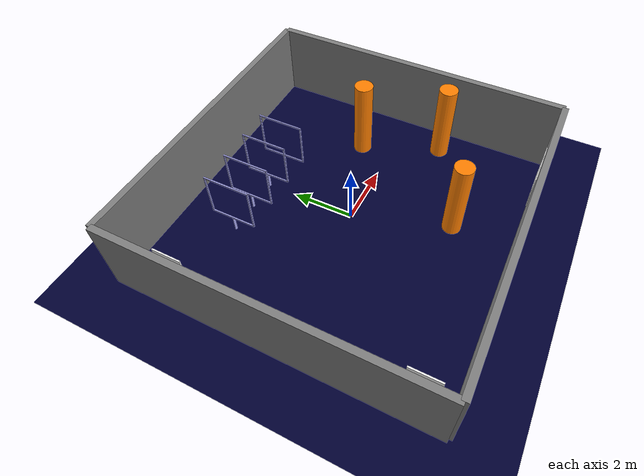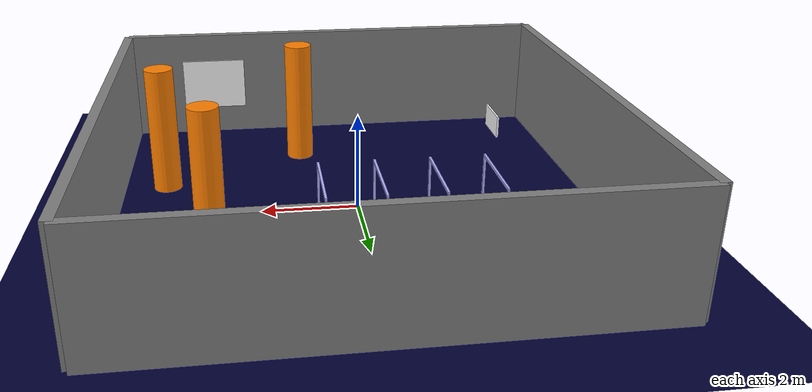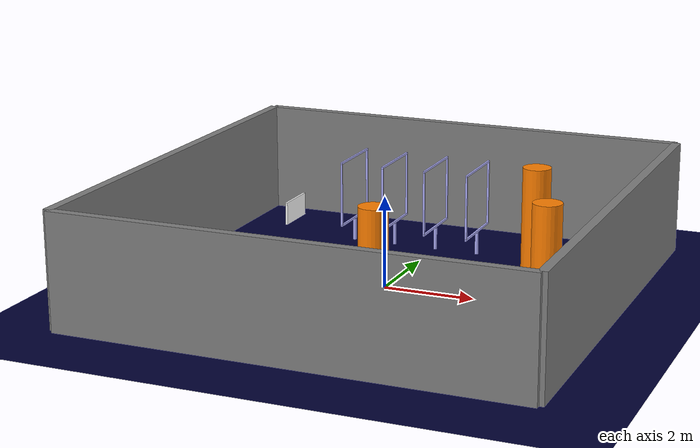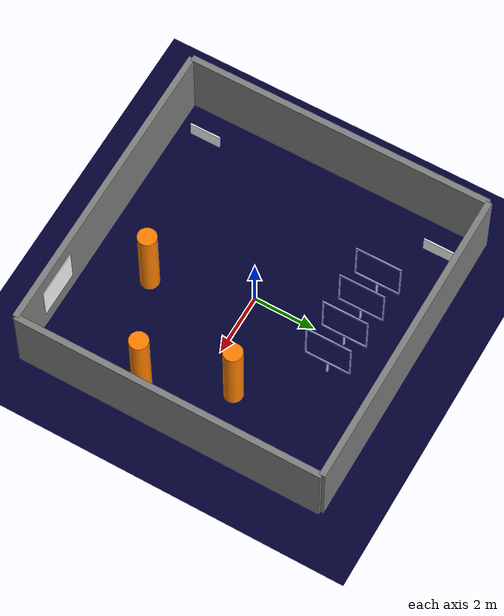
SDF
<sdf version="1.8">
 <world name="world_demo">
  <physics name="1ms" type="ode">
   <max_step_size>0.001</max_step_size>
   <real_time_factor>1.0</real_time_factor>
  </physics>
  <plugin filename="gz-sim-physics-system" name="gz::sim::systems::Physics"/>
  <plugin filename="gz-sim-user-commands-system" name="gz::sim::systems::UserCommands"/>
  <plugin filename="gz-sim-scene-broadcaster-system" name="gz::sim::systems::SceneBroadcaster"/>
  <light type="directional" name="sun">
   <pose>0 0 10 0 0 0</pose>
   <diffuse>0.8 0.8 0.8 1</diffuse>
   <specular>0.2 0.2 0.2 1</specular>
   <attenuation>
    <range>1000</range>
    <constant>0.9</constant>
    <linear>0.01</linear>
    <quadratic>0.001</quadratic>
   </attenuation>
   <direction>-0.5 0.1 -0.9</direction>
  </light>
  <model name="ground">
   <static>true</static>
   <link name="ground_link">
    <collision name="collision">
     <geometry><plane><normal>0 0 1</normal><size>15 15</size></plane></geometry>
    </collision>
    <visual name="visual">
     <geometry><plane><normal>0 0 1</normal><size>15 15</size></plane></geometry>
     <material>
      <ambient>0.0 0.0 0.2 1</ambient>
      <diffuse>0.0 0.0 0.2 1</diffuse>
      <specular>0.0 0.0 0.2 1</specular>
     </material>
    </visual>
   </link>
  </model>
  <model name="wall">
   <pose>5 0 1.25 0 0 0</pose>
   <link name="wall_link">
    <inertial><mass>10.0</mass></inertial>
    <collision name="collision"><geometry><box><size>0.2 10 2.5</size></box></geometry></collision>
    <visual name="visual">
     <geometry><box><size>0.2 10 2.5</size></box></geometry>
     <material>
      <ambient>0.5 0.5 0.5 1</ambient>
      <diffuse>0.5 0.5 0.5 1</diffuse>
      <specular>0.5 0.5 0.5 1</specular>
     </material>
    </visual>
   </link>
   <static>true</static>
  </model>
  <model name="wall2">
   <pose>-5 0 1.25 0 0 0</pose>
   <link name="wall_link">
    <inertial><mass>10.0</mass></inertial>
    <collision name="collision"><geometry><box><size>0.2 10 2.5</size></box></geometry></collision>
    <visual name="visual">
     <geometry><box><size>0.2 10 2.5</size></box></geometry>
     <material>
      <ambient>0.5 0.5 0.5 1</ambient>
      <diffuse>0.5 0.5 0.5 1</diffuse>
      <specular>0.5 0.5 0.5 1</specular>
     </material>
    </visual>
   </link>
   <static>true</static>
  </model>
  <model name="wall3">
   <pose>0 5 1.25 0 0 1.5708</pose>
   <link name="wall_link">
    <inertial><mass>10.0</mass></inertial>
    <collision name="collision"><geometry><box><size>0.2 10 2.5</size></box></geometry></collision>
    <visual name="visual">
     <geometry><box><size>0.2 10 2.5</size></box></geometry>
     <material>
      <ambient>0.5 0.5 0.5 1</ambient>
      <diffuse>0.5 0.5 0.5 1</diffuse>
      <specular>0.5 0.5 0.5 1</specular>
     </material>
    </visual>
   </link>
   <static>true</static>
  </model>
  <model name="wall4">
   <pose>0 -5 1.25 0 0 1.5708</pose>
   <link name="wall_link">
    <inertial><mass>10.0</mass></inertial>
    <collision name="collision"><geometry><box><size>0.2 10 2.5</size></box></geometry></collision>
    <visual name="visual">
     <geometry><box><size>0.2 10 2.5</size></box></geometry>
     <material>
      <ambient>0.5 0.5 0.5 1</ambient>
      <diffuse>0.5 0.5 0.5 1</diffuse>
      <specular>0.5 0.5 0.5 1</specular>
     </material>
    </visual>
   </link>
   <static>true</static>
  </model>
  <include><uri>model://platform</uri><name>platform_start</name><pose>-4 4 0.025 0 0 0</pose></include>
  <include><uri>model://platform</uri><name>platform_end</name><pose>-4 -4 0.025 0 0 0</pose></include>
  <include><uri>model://window</uri><name>window_1</name><pose>-2 3 0.25 0 0 0</pose></include>
  <include><uri>model://window</uri><name>window_2</name><pose>-1 3 0.25 0 0 0</pose></include>
  <include><uri>model://window</uri><name>window_3</name><pose>0 3 0.25 0 0 0</pose></include>
  <include><uri>model://window</uri><name>window_4</name><pose>1 3 0.25 0 0 0</pose></include>
  <model name="whiteboard">
   <pose>3 -4.9 1.25 0 0 1.5708</pose>
   <link name="whiteboard_link">
    <inertial><mass>2.0</mass></inertial>
    <collision name="collision"><geometry><box><size>0.05 1.5 1.2</size></box></geometry></collision>
    <visual name="visual">
     <geometry><box><size>0.05 1.5 1.2</size></box></geometry>
     <material><ambient>1 1 1 1</ambient><diffuse>1 1 1 1</diffuse><specular>1 1 1 1</specular></material>
    </visual>
   </link>
   <static>true</static>
  </model>
  <include><uri>model://column</uri><name>column_1</name><pose>3 1 1.35 0 0 0</pose></include>
  <include><uri>model://column</uri><name>column_2</name><pose>4 -1.5 1.35 0 0 0</pose></include>
  <include><uri>model://column</uri><name>column_3</name><pose>1 -3 1.35 0 0 0</pose></include>
 </world>
</sdf>

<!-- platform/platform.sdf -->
<sdf version="1.8">
<model name="platform">
        <pose>0 0 0 0 1.5708 0</pose>
        <link name="platform_link">
            <inertial>
                <mass>3.0</mass>
            </inertial>
            <collision name="collision">
                <geometry>
                    <box>
                        <size>0.05 1 1</size>
                    </box>
                </geometry>
            </collision>
            <visual name="visual">
                <geometry>
                    <box>
                        <size>0.05 1 1</size>
                    </box>
                </geometry>

                <material>
                    <ambient>1 1 1 1</ambient>
                    <diffuse>1 1 1 1</diffuse>
                    <specular>1 1 1 1</specular>
                </material>
            </visual>
        </link>
        <static>true</static>
    </model>
</sdf>

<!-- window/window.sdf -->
<sdf version="1.8">
<model name="window_on_post">

        <pose>0 0 0.25 0 0 0</pose>
        <static>true</static>

        <link name="base_ring_link">
            <pose>0 0 0 0 0 0</pose>
            <inertial>
                <mass>1.0</mass>
            </inertial>
            <collision name="collision">
                <geometry>
                    <cylinder>
                        <radius>0.038</radius>
                        <length>0.5</length>
                    </cylinder>
                </geometry>
            </collision>
            <visual name="visual">
                <geometry>
                    <cylinder>
                        <radius>0.038</radius>
                        <length>0.5</length>
                    </cylinder>
                </geometry>
                <material>
                    <ambient>0.7 0.7 1.0 1</ambient>
                    <diffuse>0.7 0.7 1.0 1</diffuse>
                    <specular>0.7 0.7 1.0 1</specular>
                </material>
            </visual>
        </link>

        <link name="top_beam">
            <pose>0 0 1.735 0 0 0</pose>
            <visual name="visual">
              <geometry>
                <box><size>0.04 1.5 0.04</size></box>
              </geometry>
              <material> <ambient>0.7 0.7 1.0 1</ambient>
                <diffuse>0.7 0.7 1.0 1</diffuse>
                <specular>0.7 0.7 1.0 1</specular>
              </material>
            </visual>
            <collision name="collision">
              <geometry><box><size>0.04 1.5 0.04</size></box></geometry>
            </collision>
        </link>

        <link name="bottom_beam">
            <pose>0 0 0.2746 0 0 0</pose>
            <visual name="visual">
              <geometry>
                <box><size>0.04 1.5 0.04</size></box>
              </geometry>
              <material>
                <ambient>0.7 0.7 1.0 1</ambient>
                <diffuse>0.7 0.7 1.0 1</diffuse>
                <specular>0.7 0.7 1.0 1</specular>
              </material>
            </visual>
            <collision name="collision">
              <geometry><box><size>0.04 1.5 0.04</size></box></geometry>
            </collision>
        </link>

        <link name="left_beam">
            <pose>0 0.73 1.005 0 0 0</pose>
            <visual name="visual">
              <geometry>
                <box><size>0.04 0.04 1.42</size></box>
              </geometry>
              <material>
                <ambient>0.7 0.7 1.0 1</ambient>
                <diffuse>0.7 0.7 1.0 1</diffuse>
                <specular>0.7 0.7 1.0 1</specular>
              </material>
            </visual>
            <collision name="collision">
              <geometry><box><size>0.04 0.04 1.42</size></box></geometry>
            </collision>
        </link>

        <link name="right_beam">
            <pose>0 -0.73 1.005 0 0 0</pose>
            <visual name="visual">
              <geometry>
                <box><size>0.04 0.04 1.42</size></box>
              </geometry>
              <material>
                <ambient>0.7 0.7 1.0 1</ambient>
                <diffuse>0.7 0.7 1.0 1</diffuse>
                <specular>0.7 0.7 1.0 1</specular>
              </material>
            </visual>
            <collision name="collision">
              <geometry><box><size>0.04 0.04 1.42</size></box></geometry>
            </collision>
        </link>
    </model>
</sdf>

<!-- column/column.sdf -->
<sdf version="1.8">
<model name="Column">
      <pose>0 0 1.35 0 0 0</pose>
        <link name="comuln_link">
          <inertial>
            <mass>10.0</mass>
          </inertial>
          <collision name="collision">
            <geometry>
              <cylinder>
                <radius>0.3</radius>
                <length>2.3</length>
              </cylinder>
            </geometry>
          </collision>
          <visual name="visual">
            <geometry>
              <cylinder>
                <radius>0.3</radius>
                <length>2.7</length>
              </cylinder>
            </geometry>
            <material>
              <ambient>1 0.5 0 1</ambient>
              <diffuse>1 0.5 0 1</diffuse>
              <specular>1 0.5 0 1</specular>
            </material>
          </visual>
        </link>
      </model>
</sdf>
